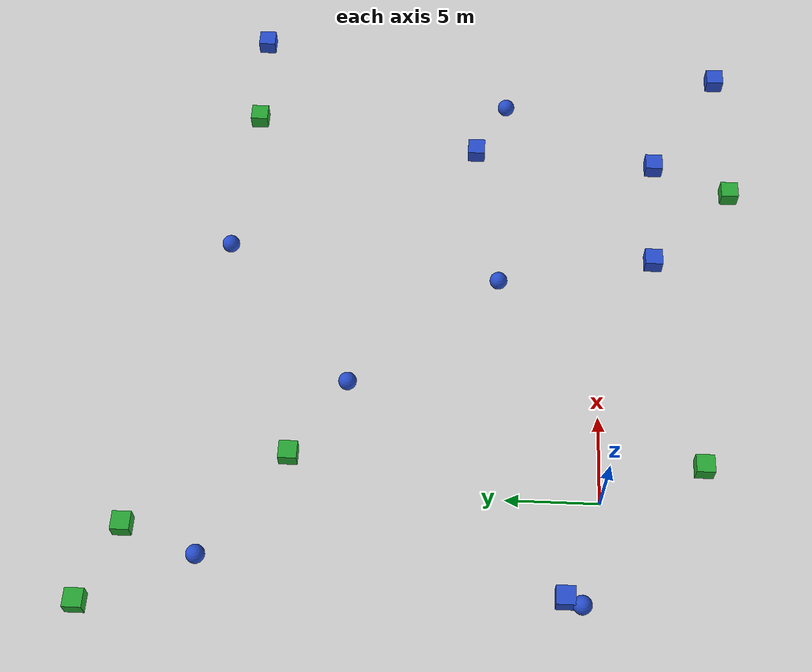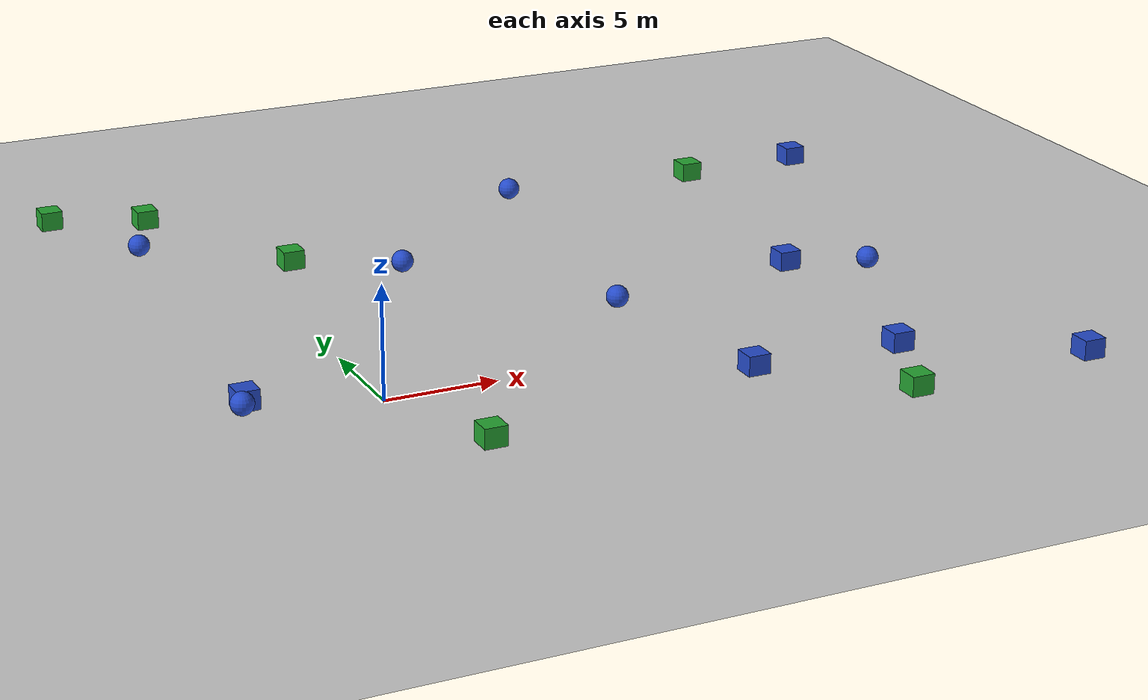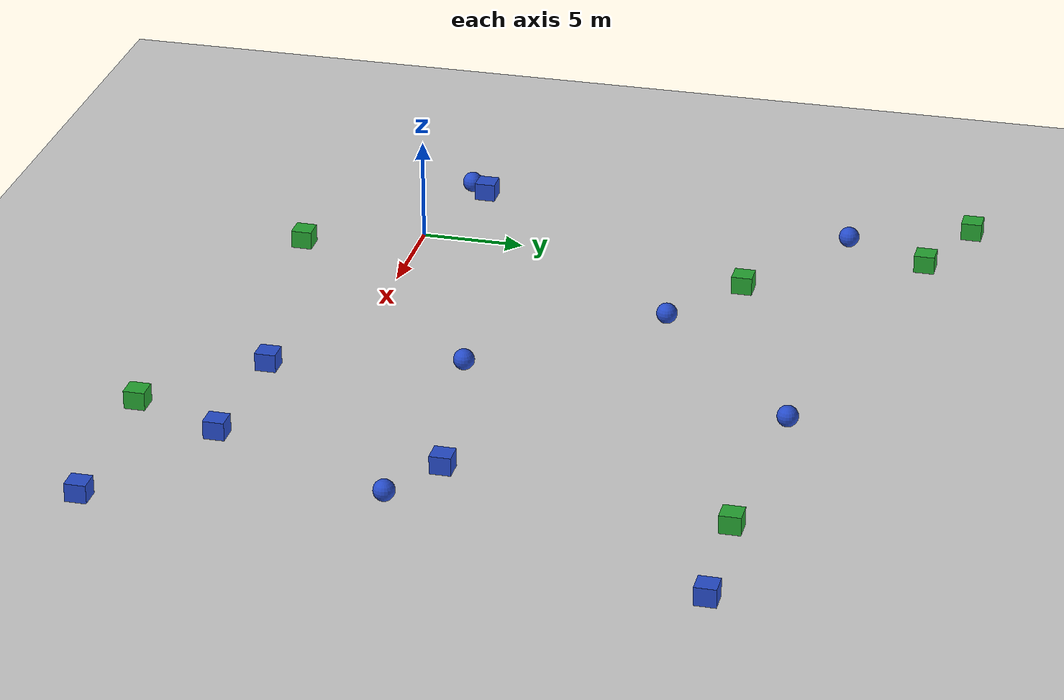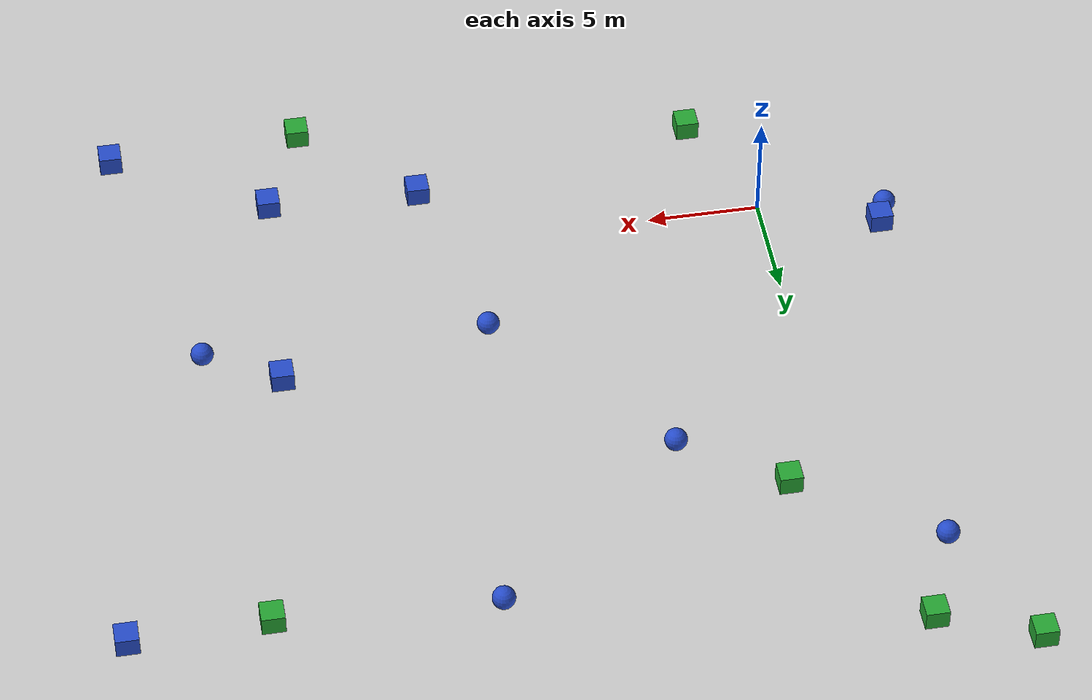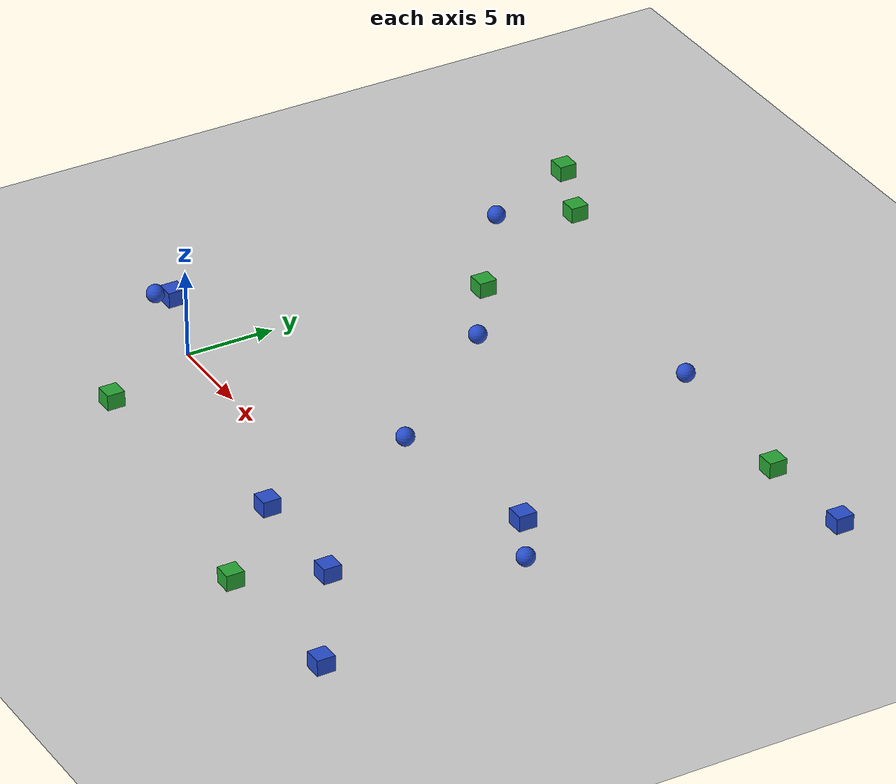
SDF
<sdf version="1.6">
 <world name="default">
  <light name="sun" type="directional">
   <pose>0 0 10 0 -0 0</pose>
   <diffuse>0.8 0.8 0.8 1</diffuse>
   <specular>0.1 0.1 0.1 1</specular>
   <attenuation>
    <range>1000</range>
    <constant>0.9</constant>
    <linear>0.01</linear>
    <quadratic>0.001</quadratic>
   </attenuation>
   <direction>-0.5 0.5 -1</direction>
  </light>
  <model name="ground_plane">
   <static>1</static>
   <link name="link">
    <collision name="collision">
     <geometry><plane><normal>0 0 1</normal><size>100 100</size></plane></geometry>
     <surface><friction><ode><mu>100</mu><mu2>50</mu2></ode></friction></surface>
    </collision>
    <visual name="visual">
     <cast_shadows>0</cast_shadows>
     <geometry><plane><normal>0 0 1</normal><size>100 100</size></plane></geometry>
     <material>
      <script><uri>file://media/materials/scripts/gazebo.material</uri><name>Gazebo/Grey</name></script>
     </material>
    </visual>
   </link>
  </model>
  <model name="unit_box_green_6">
   <pose>24.5332064006 20.4179558146 0.329741 0 -0 0</pose>
   <link name="link">
    <inertial>
     <mass>1</mass>
     <inertia>
      <ixx>0.166667</ixx>
      <ixy>0</ixy>
      <ixz>0</ixz>
      <iyy>0.166667</iyy>
      <iyz>0</iyz>
      <izz>0.166667</izz>
     </inertia>
    </inertial>
    <collision name="collision"><geometry><box><size>1 1 0.999999</size></box></geometry></collision>
    <visual name="visual">
     <geometry><box><size>1 1 0.999999</size></box></geometry>
     <material>
      <script><name>Gazebo/Green</name><uri>file://media/materials/scripts/gazebo.material</uri></script>
     </material>
    </visual>
   </link>
  </model>
  <model name="unit_box_green_5">
   <pose>2.2367471659 -5.54017794073 0.329741 0 -0 0</pose>
   <link name="link">
    <inertial>
     <mass>1</mass>
     <inertia>
      <ixx>0.166667</ixx>
      <ixy>0</ixy>
      <ixz>0</ixz>
      <iyy>0.166667</iyy>
      <iyz>0</iyz>
      <izz>0.166667</izz>
     </inertia>
    </inertial>
    <collision name="collision"><geometry><box><size>1 1 0.999999</size></box></geometry></collision>
    <visual name="visual">
     <geometry><box><size>1 1 0.999999</size></box></geometry>
     <material>
      <script><name>Gazebo/Green</name><uri>file://media/materials/scripts/gazebo.material</uri></script>
     </material>
    </visual>
   </link>
  </model>
  <model name="unit_box_green_4">
   <pose>-6.38948082877 26.4638309044 0.329741 0 -0 0</pose>
   <link name="link">
    <inertial>
     <mass>1</mass>
     <inertia>
      <ixx>0.166667</ixx>
      <ixy>0</ixy>
      <ixz>0</ixz>
      <iyy>0.166667</iyy>
      <iyz>0</iyz>
      <izz>0.166667</izz>
     </inertia>
    </inertial>
    <collision name="collision"><geometry><box><size>1 1 0.999999</size></box></geometry></collision>
    <visual name="visual">
     <geometry><box><size>1 1 0.999999</size></box></geometry>
     <material>
      <script><name>Gazebo/Green</name><uri>file://media/materials/scripts/gazebo.material</uri></script>
     </material>
    </visual>
   </link>
  </model>
  <model name="unit_box_green_3">
   <pose>19.9410677028 -8.02388466098 0.329741 0 -0 0</pose>
   <link name="link">
    <inertial>
     <mass>1</mass>
     <inertia>
      <ixx>0.166667</ixx>
      <ixy>0</ixy>
      <ixz>0</ixz>
      <iyy>0.166667</iyy>
      <iyz>0</iyz>
      <izz>0.166667</izz>
     </inertia>
    </inertial>
    <collision name="collision"><geometry><box><size>1 1 0.999999</size></box></geometry></collision>
    <visual name="visual">
     <geometry><box><size>1 1 0.999999</size></box></geometry>
     <material>
      <script><name>Gazebo/Green</name><uri>file://media/materials/scripts/gazebo.material</uri></script>
     </material>
    </visual>
   </link>
  </model>
  <model name="unit_box_green_2">
   <pose>2.09463392716 16.5350556494 0.329741 0 -0 0</pose>
   <link name="link">
    <inertial>
     <mass>1</mass>
     <inertia>
      <ixx>0.166667</ixx>
      <ixy>0</ixy>
      <ixz>0</ixz>
      <iyy>0.166667</iyy>
      <iyz>0</iyz>
      <izz>0.166667</izz>
     </inertia>
    </inertial>
    <collision name="collision"><geometry><box><size>1 1 0.999999</size></box></geometry></collision>
    <visual name="visual">
     <geometry><box><size>1 1 0.999999</size></box></geometry>
     <material>
      <script><name>Gazebo/Green</name><uri>file://media/materials/scripts/gazebo.material</uri></script>
     </material>
    </visual>
   </link>
  </model>
  <model name="unit_box_green_1">
   <pose>-2.23872955556 24.7362695723 0.329741 0 -0 0</pose>
   <link name="link">
    <inertial>
     <mass>1</mass>
     <inertia>
      <ixx>0.166667</ixx>
      <ixy>0</ixy>
      <ixz>0</ixz>
      <iyy>0.166667</iyy>
      <iyz>0</iyz>
      <izz>0.166667</izz>
     </inertia>
    </inertial>
    <collision name="collision"><geometry><box><size>1 1 0.999999</size></box></geometry></collision>
    <visual name="visual">
     <geometry><box><size>1 1 0.999999</size></box></geometry>
     <material>
      <script><name>Gazebo/Green</name><uri>file://media/materials/scripts/gazebo.material</uri></script>
     </material>
    </visual>
   </link>
  </model>
  <model name="unit_box_blue_6">
   <pose>28.536006318 -7.68909538381 0.329741 0 -0 0</pose>
   <link name="link">
    <inertial>
     <mass>1</mass>
     <inertia>
      <ixx>0.166667</ixx>
      <ixy>0</ixy>
      <ixz>0</ixz>
      <iyy>0.166667</iyy>
      <iyz>0</iyz>
      <izz>0.166667</izz>
     </inertia>
    </inertial>
    <collision name="collision"><geometry><box><size>1 1 0.999999</size></box></geometry></collision>
    <visual name="visual">
     <geometry><box><size>1 1 0.999999</size></box></geometry>
     <material>
      <script><name>Gazebo/Blue</name><uri>file://media/materials/scripts/gazebo.material</uri></script>
     </material>
    </visual>
   </link>
  </model>
  <model name="unit_box_blue_5">
   <pose>15.0402420058 -3.35691512103 0.329741 0 -0 0</pose>
   <link name="link">
    <inertial>
     <mass>1</mass>
     <inertia>
      <ixx>0.166667</ixx>
      <ixy>0</ixy>
      <ixz>0</ixz>
      <iyy>0.166667</iyy>
      <iyz>0</iyz>
      <izz>0.166667</izz>
     </inertia>
    </inertial>
    <collision name="collision"><geometry><box><size>1 1 0.999999</size></box></geometry></collision>
    <visual name="visual">
     <geometry><box><size>1 1 0.999999</size></box></geometry>
     <material>
      <script><name>Gazebo/Blue</name><uri>file://media/materials/scripts/gazebo.material</uri></script>
     </material>
    </visual>
   </link>
  </model>
  <model name="unit_box_blue_4">
   <pose>22.4801812352 7.03912189284 0.329741 0 -0 0</pose>
   <link name="link">
    <inertial>
     <mass>1</mass>
     <inertia>
      <ixx>0.166667</ixx>
      <ixy>0</ixy>
      <ixz>0</ixz>
      <iyy>0.166667</iyy>
      <iyz>0</iyz>
      <izz>0.166667</izz>
     </inertia>
    </inertial>
    <collision name="collision"><geometry><box><size>1 1 0.999999</size></box></geometry></collision>
    <visual name="visual">
     <geometry><box><size>1 1 0.999999</size></box></geometry>
     <material>
      <script><name>Gazebo/Blue</name><uri>file://media/materials/scripts/gazebo.material</uri></script>
     </material>
    </visual>
   </link>
  </model>
  <model name="unit_box_blue_3">
   <pose>-5.20490752011 1.8716944625 0.329741 0 -0 0</pose>
   <link name="link">
    <inertial>
     <mass>1</mass>
     <inertia>
      <ixx>0.166667</ixx>
      <ixy>0</ixy>
      <ixz>0</ixz>
      <iyy>0.166667</iyy>
      <iyz>0</iyz>
      <izz>0.166667</izz>
     </inertia>
    </inertial>
    <collision name="collision"><geometry><box><size>1 1 0.999999</size></box></geometry></collision>
    <visual name="visual">
     <geometry><box><size>1 1 0.999999</size></box></geometry>
     <material>
      <script><name>Gazebo/Blue</name><uri>file://media/materials/scripts/gazebo.material</uri></script>
     </material>
    </visual>
   </link>
  </model>
  <model name="unit_box_blue_2">
   <pose>30.5174081366 20.5574911309 0.329741 0 -0 0</pose>
   <link name="link">
    <inertial>
     <mass>1</mass>
     <inertia>
      <ixx>0.166667</ixx>
      <ixy>0</ixy>
      <ixz>0</ixz>
      <iyy>0.166667</iyy>
      <iyz>0</iyz>
      <izz>0.166667</izz>
     </inertia>
    </inertial>
    <collision name="collision"><geometry><box><size>1 1 0.999999</size></box></geometry></collision>
    <visual name="visual">
     <geometry><box><size>1 1 0.999999</size></box></geometry>
     <material>
      <script><name>Gazebo/Blue</name><uri>file://media/materials/scripts/gazebo.material</uri></script>
     </material>
    </visual>
   </link>
  </model>
  <model name="unit_box_blue_1">
   <pose>21.7906619939 -3.63299347458 0.329741 0 -0 0</pose>
   <link name="link">
    <inertial>
     <mass>1</mass>
     <inertia>
      <ixx>0.166667</ixx>
      <ixy>0</ixy>
      <ixz>0</ixz>
      <iyy>0.166667</iyy>
      <iyz>0</iyz>
      <izz>0.166667</izz>
     </inertia>
    </inertial>
    <collision name="collision"><geometry><box><size>1 1 0.999999</size></box></geometry></collision>
    <visual name="visual">
     <geometry><box><size>1 1 0.999999</size></box></geometry>
     <material>
      <script><name>Gazebo/Blue</name><uri>file://media/materials/scripts/gazebo.material</uri></script>
     </material>
    </visual>
   </link>
  </model>
  <model name="unit_sphere_blue_6">
   <pose>-3.76519227414 20.7087974602 0.5 0 -0 0</pose>
   <link name="link">
    <inertial>
     <mass>1</mass>
     <inertia><ixx>0.1</ixx><ixy>0</ixy><ixz>0</ixz><iyy>0.1</iyy><iyz>0</iyz><izz>0.1</izz></inertia>
    </inertial>
    <collision name="collision"><geometry><sphere><radius>0.5</radius></sphere></geometry></collision>
    <visual name="visual">
     <geometry><sphere><radius>0.5</radius></sphere></geometry>
     <material>
      <script><name>Gazebo/Blue</name><uri>file://media/materials/scripts/gazebo.material</uri></script>
     </material>
    </visual>
   </link>
  </model>
  <model name="unit_sphere_blue_5">
   <pose>25.7432589489 5.29310662289 0.5 0 -0 0</pose>
   <link name="link">
    <inertial>
     <mass>1</mass>
     <inertia><ixx>0.1</ixx><ixy>0</ixy><ixz>0</ixz><iyy>0.1</iyy><iyz>0</iyz><izz>0.1</izz></inertia>
    </inertial>
    <collision name="collision"><geometry><sphere><radius>0.5</radius></sphere></geometry></collision>
    <visual name="visual">
     <geometry><sphere><radius>0.5</radius></sphere></geometry>
     <material>
      <script><name>Gazebo/Blue</name><uri>file://media/materials/scripts/gazebo.material</uri></script>
     </material>
    </visual>
   </link>
  </model>
  <model name="unit_sphere_blue_4">
   <pose>6.41560404272 13.687501286 0.5 0 -0 0</pose>
   <link name="link">
    <inertial>
     <mass>1</mass>
     <inertia><ixx>0.1</ixx><ixy>0</ixy><ixz>0</ixz><iyy>0.1</iyy><iyz>0</iyz><izz>0.1</izz></inertia>
    </inertial>
    <collision name="collision"><geometry><sphere><radius>0.5</radius></sphere></geometry></collision>
    <visual name="visual">
     <geometry><sphere><radius>0.5</radius></sphere></geometry>
     <material>
      <script><name>Gazebo/Blue</name><uri>file://media/materials/scripts/gazebo.material</uri></script>
     </material>
    </visual>
   </link>
  </model>
  <model name="unit_sphere_blue_3">
   <pose>15.0489936225 21.0916343812 0.5 0 -0 0</pose>
   <link name="link">
    <inertial>
     <mass>1</mass>
     <inertia><ixx>0.1</ixx><ixy>0</ixy><ixz>0</ixz><iyy>0.1</iyy><iyz>0</iyz><izz>0.1</izz></inertia>
    </inertial>
    <collision name="collision"><geometry><sphere><radius>0.5</radius></sphere></geometry></collision>
    <visual name="visual">
     <geometry><sphere><radius>0.5</radius></sphere></geometry>
     <material>
      <script><name>Gazebo/Blue</name><uri>file://media/materials/scripts/gazebo.material</uri></script>
     </material>
    </visual>
   </link>
  </model>
  <model name="unit_sphere_blue_2">
   <pose>13.1996168586 5.54666483199 0.5 0 -0 0</pose>
   <link name="link">
    <inertial>
     <mass>1</mass>
     <inertia><ixx>0.1</ixx><ixy>0</ixy><ixz>0</ixz><iyy>0.1</iyy><iyz>0</iyz><izz>0.1</izz></inertia>
    </inertial>
    <collision name="collision"><geometry><sphere><radius>0.5</radius></sphere></geometry></collision>
    <visual name="visual">
     <geometry><sphere><radius>0.5</radius></sphere></geometry>
     <material>
      <script><name>Gazebo/Blue</name><uri>file://media/materials/scripts/gazebo.material</uri></script>
     </material>
    </visual>
   </link>
  </model>
  <model name="unit_sphere_blue_1">
   <pose>-5.59427605131 1.02603598278 0.5 0 -0 0</pose>
   <link name="link">
    <inertial>
     <mass>1</mass>
     <inertia><ixx>0.1</ixx><ixy>0</ixy><ixz>0</ixz><iyy>0.1</iyy><iyz>0</iyz><izz>0.1</izz></inertia>
    </inertial>
    <collision name="collision"><geometry><sphere><radius>0.5</radius></sphere></geometry></collision>
    <visual name="visual">
     <geometry><sphere><radius>0.5</radius></sphere></geometry>
     <material>
      <script><name>Gazebo/Blue</name><uri>file://media/materials/scripts/gazebo.material</uri></script>
     </material>
    </visual>
   </link>
  </model>
  <gravity>0 0 -9.8</gravity>
  <magnetic_field>6e-06 2.3e-05 -4.2e-05</magnetic_field>
  <atmosphere type="adiabatic"/>
  <physics default="0" name="default_physics" type="ode">
   <max_step_size>0.001</max_step_size>
   <real_time_factor>1</real_time_factor>
   <real_time_update_rate>1000</real_time_update_rate>
  </physics>
  <scene><ambient>0.4 0.4 0.4 1</ambient><background>0.7 0.7 0.7 1</background><shadows>1</shadows></scene>
  <spherical_coordinates>
   <surface_model>EARTH_WGS84</surface_model>
   <latitude_deg>0</latitude_deg>
   <longitude_deg>0</longitude_deg>
   <elevation>0</elevation>
   <heading_deg>0</heading_deg>
  </spherical_coordinates>
 </world>
</sdf>
